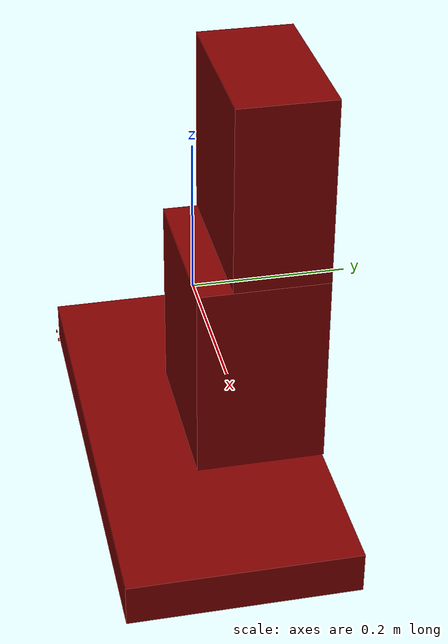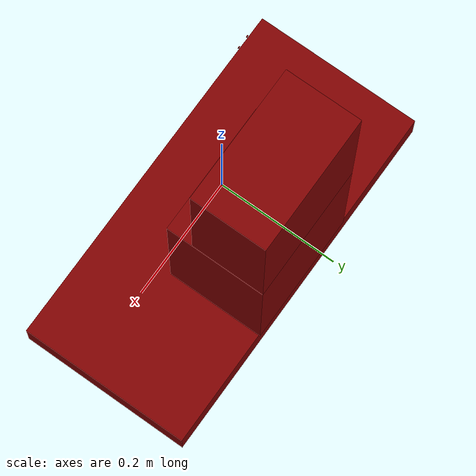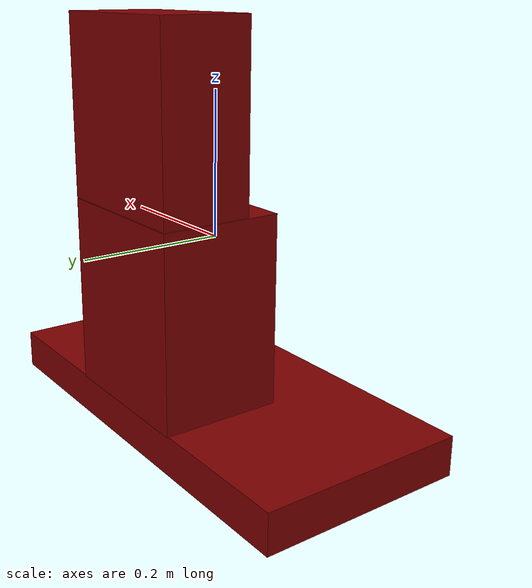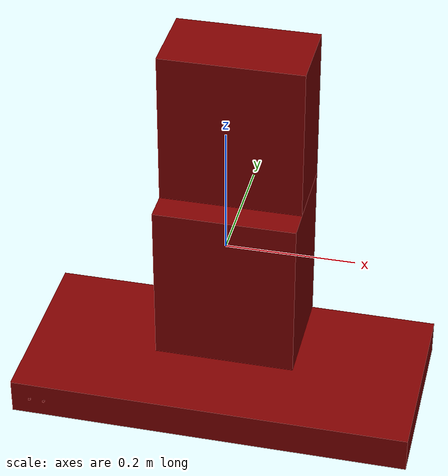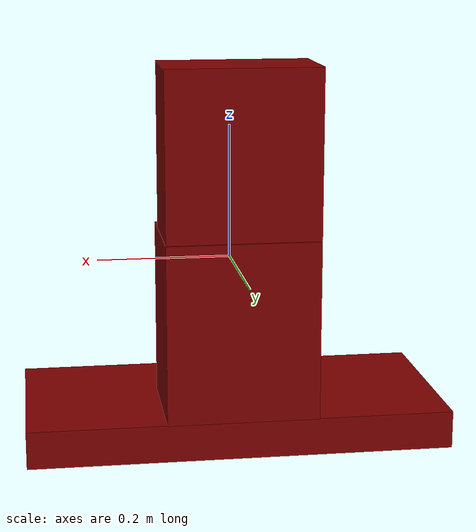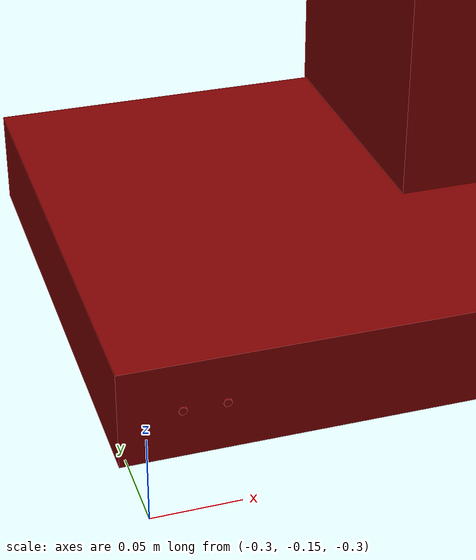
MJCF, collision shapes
<?xml version='1.0' encoding='UTF-8'?>
<mujoco model="model">
  <compiler angle="radian"/>
  <asset>
    <mesh file="visuals/Body001.obj" name="Body001_vis"/>
    <mesh file="visuals/Button001.obj" name="Button001_vis"/>
    <mesh file="visuals/Button002.obj" name="Button002_vis"/>
    <texture file="visuals/T_BC001.png" name="Body001_material" type="2d"/>
    <material name="Body001_material" rgba="1 1 1 1.0" texture="Body001_material" shininess="0.2512328028678894" specular="0.3103448502657381"/>
    <texture file="visuals/T_BC001.png" name="Button001_material" type="2d"/>
    <material name="Button001_material" rgba="1 1 1 1.0" texture="Button001_material" shininess="0.2512328028678894" specular="0.3103448502657381"/>
    <texture file="visuals/T_BC001.png" name="Button002_material" type="2d"/>
    <material name="Button002_material" rgba="1 1 1 1.0" texture="Button002_material" shininess="0.2512328028678894" specular="0.3103448502657381"/>
  </asset>
  <default>
    <default class="visual">
      <geom conaffinity="0" contype="0" group="1" type="mesh"/>
    </default>
    <default class="collision">
      <geom group="0" rgba="0.5 0 0 0.5"/>
    </default>
    <default class="spawn">
      <geom group="0" rgba="1 1 1 0.5" contype="0" conaffinity="0"/>
      <site group="0" rgba="1 1 1 0.5"/>
    </default>
    <default class="region">
      <geom group="1" conaffinity="0" contype="0" rgba="0 1 0 0"/>
    </default>
  </default>
  <worldbody>
    <body>
      <body name="object">
        <geom mesh="Body001_vis" type="mesh" solimp="0.998 0.998 0.001" solref="0.001 1" density="100" friction="0.95 0.3 0.1" class="visual" material="Body001_material"/>
        <geom class="collision" type="box" pos="0.0002160108124371618 0.0022952635772526264 -0.23996613919734955" size="0.31345343589782715 0.14747558534145355 0.027916155755519867" quat="1.0 0.0 0.0 0.0"/>
        <geom class="collision" type="box" pos="-5.739702757523446e-08 0.06708835810422897 -0.07963159680366516" size="0.11166291683912277 0.08480796962976456 0.13256454467773438" quat="1.0 0.0 0.0 0.0"/>
        <geom class="collision" type="box" pos="-5.969290839402674e-08 0.08957803249359131 0.1766984909772873" size="0.11166291683912277 0.06231829896569252 0.12274312227964401" quat="1.0 0.0 0.0 0.0"/>
        <geom class="collision" type="box" pos="-0.0001321064046351239 -0.010899695567786694 -0.28365418314933777" size="0.03226620331406593 0.02035621553659439 0.017088599503040314" quat="1.0 0.0 0.0 0.0"/>
        <body name="Button001">
          <joint axis="0.0 1.0 0.0" pos="-0.2815648317337036 -0.15141354501247406 -0.23486673831939697" limited="true" name="Button001_joint" range="0.0 0.001" type="slide" damping="1" frictionloss="1" armature=".01" stiffness="0.05"/>
          <geom mesh="Button001_vis" type="mesh" solimp="0.998 0.998 0.001" solref="0.001 1" density="100" friction="0.95 0.3 0.1" class="visual" material="Button001_material"/>
          <geom class="collision" type="cylinder" pos="-0.2815355658531189 -0.1517217755317688 -0.23484845459461212" size="0.0021880476269870996 0.0007075949688442051" quat="0.7071067094802856 0.7071068286895752 0.0 0.0"/>
        </body>
        <body name="Button002">
          <joint axis="0.0 1.0 0.0" pos="-0.2585376501083374 -0.15141354501247406 -0.23486661911010742" limited="true" name="Button002_joint" range="0.0 0.001" type="slide" damping="1" frictionloss="1" armature=".01" stiffness="0.05"/>
          <geom mesh="Button002_vis" type="mesh" solimp="0.998 0.998 0.001" solref="0.001 1" density="100" friction="0.95 0.3 0.1" class="visual" material="Button002_material"/>
          <geom class="collision" type="cylinder" pos="-0.2585379481315613 -0.1517217755317688 -0.23486724495887756" size="0.0021880476269870996 0.0007075949688442051" quat="0.7071067094802856 0.7071068286895752 0.0 0.0"/>
        </body>
        <geom class="region" name="reg_main" type="box" pos="-7.450580596923828e-09 0.0 0.0" size="0.31366947293281555 0.15242967009544373 0.3009205758571625"/>
      </body>
    </body>
  </worldbody>
  <actuator>
    <motor name="Button001_joint_actuator" joint="Button001_joint" gear="0.5"/>
    <motor name="Button002_joint_actuator" joint="Button002_joint" gear="0.5"/>
  </actuator>
</mujoco>
